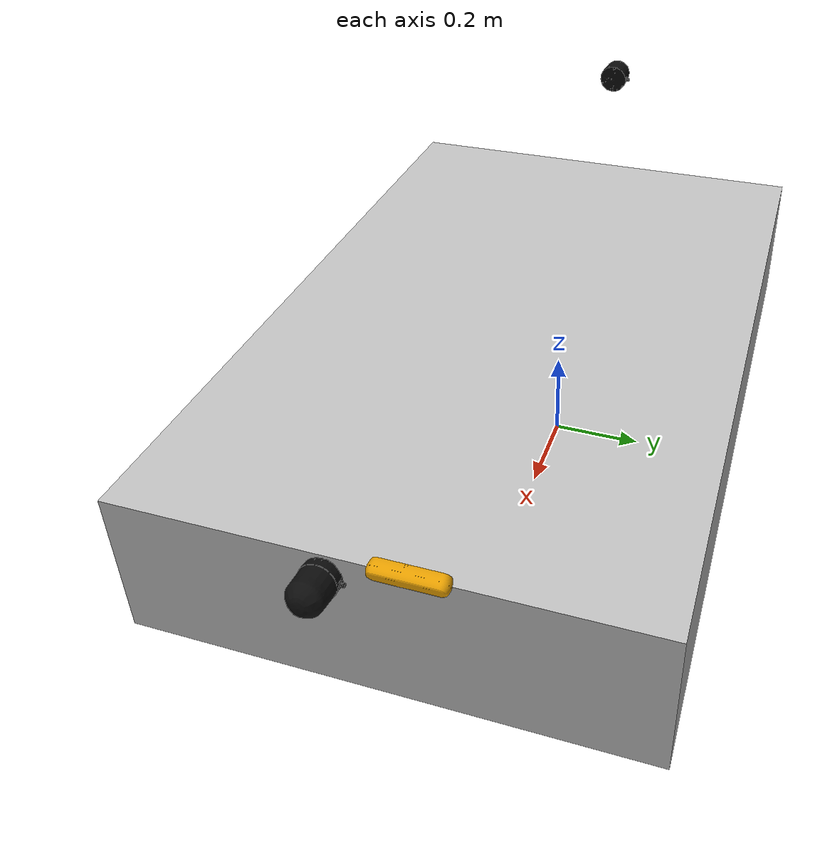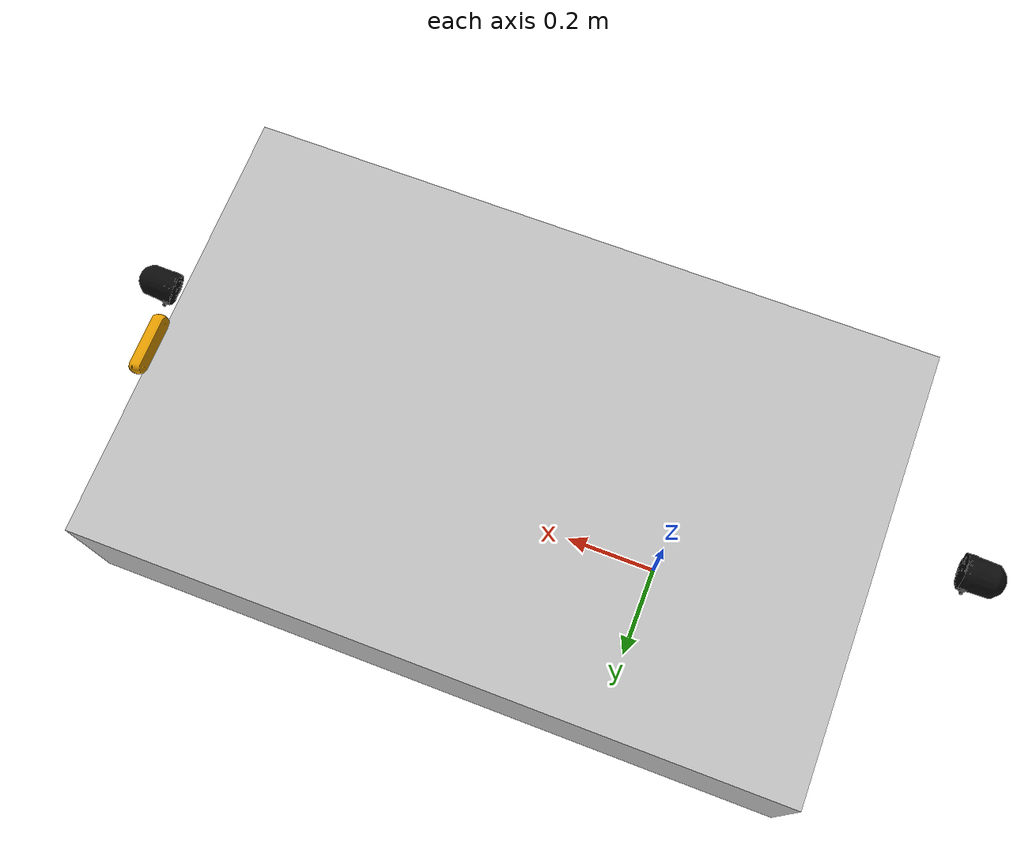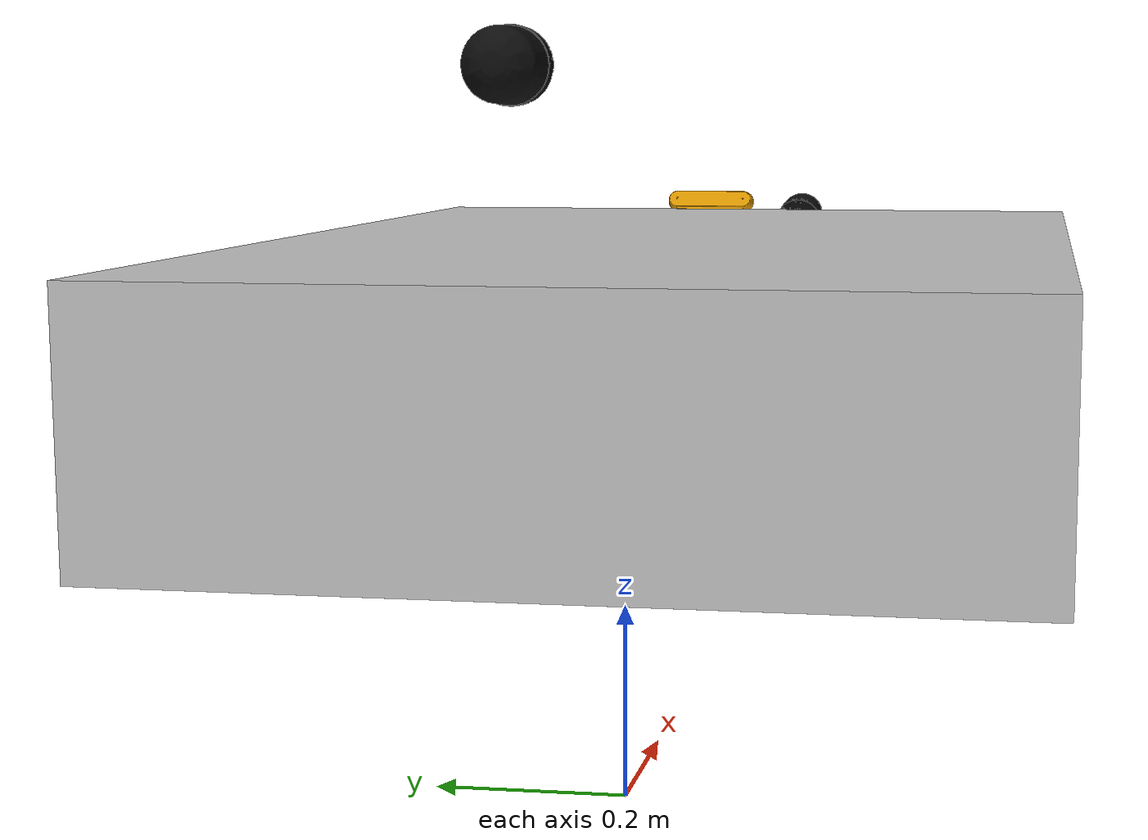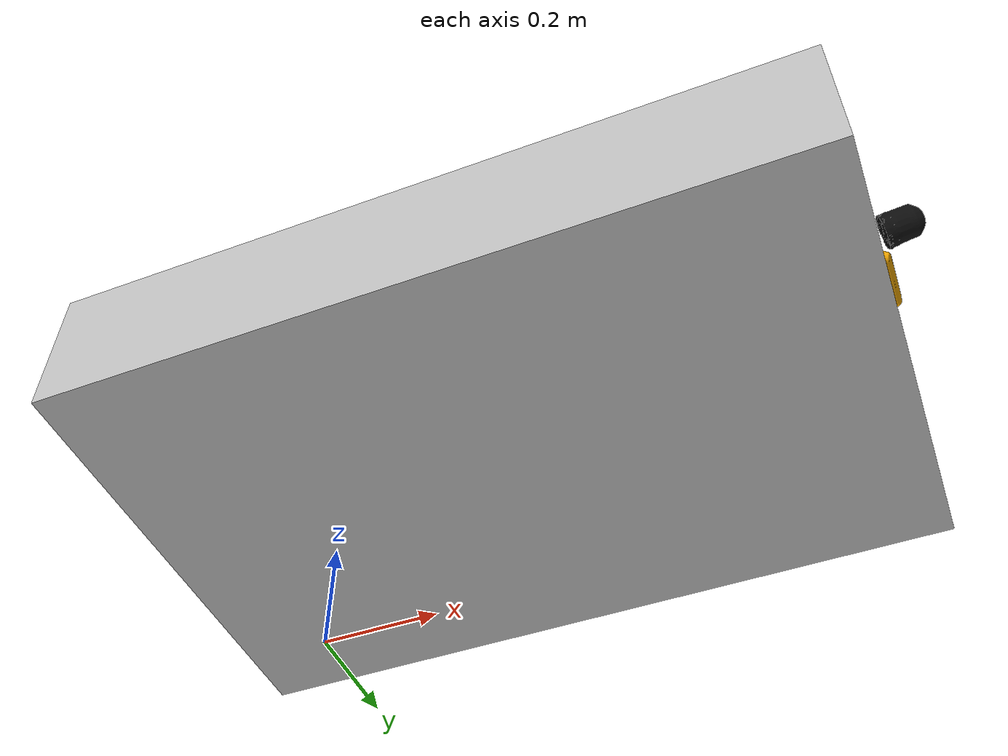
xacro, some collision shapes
<?xml version="1.0"?>
<robot name="sweeper_complete" xmlns:xacro="http://www.ros.org/wiki/xacro">

<!-- Modello generico del robot: telaio, ruote e sensori-->
<xacro:include filename="$(find autosweep_description)/urdf/sweeper_complete.urdf.xacro" />

<!-- Hardware simulato esposto a ros2 control-->
<ros2_control name="GazeboSimSystem" type="system">

    <hardware>
        <plugin>gz_ros2_control/GazeboSimSystem</plugin>
    </hardware>

    <!-- Interfaccia sterzo -->
    <joint name="front_steering_joint">
        <command_interface name="position">
            <param name="min"> -0.7854 </param>
            <param name="max"> 0.7854 </param>
        </command_interface>

        <state_interface name="position" />
        <state_interface name="velocity" />
    </joint>

    <!-- Interfaccia ruota motrice anteriore -->
    <joint name="front_wheel_joint">
      <command_interface name="velocity">
        <param name="min">-16.0</param>
        <param name="max">16.0</param>
      </command_interface>

      <state_interface name="position" />
      <state_interface name="velocity" />
    </joint>

    <!-- Interfaccia ruote posteriori -->
    <joint name="rear_left_wheel_joint">
      <state_interface name="position" />
      <state_interface name="velocity" />
    </joint>

    <joint name="rear_right_wheel_joint">
      <state_interface name="position" />
      <state_interface name="velocity" />
    </joint>

  </ros2_control>

  <!-- Collegamento tra interfacce ros2_control e giunti in Gazebo -->
  <gazebo>
    <plugin
      filename="libgz_ros2_control-system.so"
      name="gz_ros2_control::GazeboSimROS2ControlPlugin">

      <parameters>
        $(find autosweep_gazebo)/config/sweeper_controllers.yaml
      </parameters>

    </plugin>
  </gazebo>

  <!-- Odometria ground truth: posa reale del robot nel mondo Gazebo,
       pubblicata come /odom e TF odom -> base_footprint (via bridge) -->
  <gazebo>
    <plugin
      filename="gz-sim-odometry-publisher-system"
      name="gz::sim::systems::OdometryPublisher">
      <odom_frame>odom</odom_frame>
      <robot_base_frame>base_footprint</robot_base_frame>
      <dimensions>3</dimensions>
      <odom_publish_frequency>50</odom_publish_frequency>
      <odom_topic>/ground_truth/odom</odom_topic>
      <tf_topic>/ground_truth/tf</tf_topic>
    </plugin>
  </gazebo>

</robot>

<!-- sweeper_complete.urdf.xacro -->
<robot name="sweeper_complete" xmlns:xacro="http://www.ros.org/wiki/xacro">

  <!-- Load the vehicle -->
  <xacro:include filename="$(find autosweep_description)/urdf/sweeper.urdf" />

  <!-- Load the sensors -->
  <xacro:include filename="$(find autosweep_description)/urdf/lidar_dome.xacro" />
  <xacro:include filename="$(find autosweep_description)/urdf/imu.xacro" />
  <xacro:include filename="$(find autosweep_description)/urdf/rgbd_camera.xacro" />

  <!-- Load the drivetrain -->
  <xacro:include filename="$(find autosweep_description)/urdf/drivetrain.xacro" />
  <xacro:sweeper_base_footprint child="base_link" />
  <xacro:sweeper_drivetrain parent="base_link" />

  <!-- LiDAR anteriori attivi: true = presente nel modello -->
  <xacro:property name="enable_lidar_front_low" value="false" />
  <xacro:property name="enable_lidar_front_high" value="false" />
  <xacro:property name="enable_lidar_front_fwd" value="false" />
  <xacro:property name="enable_lidar_front_bwd" value="false" />

  <!-- Posa del LiDAR anteriore intermedio: inclinazione su y e
       spostamento lungo il proprio asse z rispetto a (0.7, 0, 0.20) -->
  <xacro:property name="lidar_front_pitch" value="1.4137" />
  <xacro:property name="lidar_front_ego_z" value="0.02" />

  <xacro:property name="front_pair_gap" value="0.03" />
  <xacro:property name="front_pair_spacing" value="${0.035025 + front_pair_gap + 0.124/2}" />
  <xacro:property name="lidar_front_y" value="${-front_pair_spacing/2}" />
  <xacro:property name="rgbd_camera_front_y" value="${front_pair_spacing/2}" />

  <!-- Pose provvisoria del LiDAR anteriore basso (disattivato) -->
  <xacro:if value="${enable_lidar_front_low}">
    <xacro:lidar_dome
      name="lidar_front_low"
      parent="base_link"
      xyz="${0.7 + 0.07*sin(1.5184)} 0 ${0.00 + 0.07*cos(1.5184)}"
      rpy="0 1.5184 0"
      topic="lidar_front_low" />
  </xacro:if>

  <!-- Pose provvisoria del LiDAR anteriore -->
  <xacro:lidar_dome
    name="lidar_front"
    parent="base_link"
    xyz="${0.7 + lidar_front_ego_z*sin(lidar_front_pitch)} ${lidar_front_y} ${0.20 + lidar_front_ego_z*cos(lidar_front_pitch)}"
    rpy="0 ${lidar_front_pitch} 0"
    topic="lidar_front" />

  <!-- Variante avanzata: +5 cm lungo z del LiDAR anteriore (disattivato) -->
  <xacro:if value="${enable_lidar_front_fwd}">
    <xacro:lidar_dome
      name="lidar_front_fwd"
      parent="base_link"
      xyz="${0.7 + (lidar_front_ego_z + 0.05)*sin(lidar_front_pitch)} 0 ${0.20 + (lidar_front_ego_z + 0.05)*cos(lidar_front_pitch)}"
      rpy="0 ${lidar_front_pitch} 0"
      topic="lidar_front_fwd" />
  </xacro:if>

  <!-- Variante arretrata: -5 cm lungo z del LiDAR anteriore (disattivato) -->
  <xacro:if value="${enable_lidar_front_bwd}">
    <xacro:lidar_dome
      name="lidar_front_bwd"
      parent="base_link"
      xyz="${0.7 + (lidar_front_ego_z - 0.05)*sin(lidar_front_pitch)} 0 ${0.20 + (lidar_front_ego_z - 0.05)*cos(lidar_front_pitch)}"
      rpy="0 ${lidar_front_pitch} 0"
      topic="lidar_front_bwd" />
  </xacro:if>

  <!-- Pose provvisoria del LiDAR anteriore alto (disattivato) -->
  <xacro:if value="${enable_lidar_front_high}">
    <xacro:lidar_dome
      name="lidar_front_high"
      parent="base_link"
      xyz="0.7 0 0.40"
      rpy="0 1.3090 0"
      topic="lidar_front_high" />
  </xacro:if>

  <!-- Pose provvisoria del LiDAR posteriore -->
  <xacro:lidar_dome
    name="lidar_rear"
    parent="base_link"
    xyz="-0.78 0 0.40"
    rpy="0 -1.5707 0"
    topic="lidar_rear" />

  <xacro:property name="lidar_front_dome_center" value="${lidar_front_ego_z + 0.036525}" />
  <xacro:property name="rgbd_camera_front_pitch" value="0.3491" />
  <xacro:property name="rgbd_camera_front_back" value="0.05" />
  <xacro:depth_camera
    name="rgbd_camera_left"
    parent="base_link"
    xyz="${0.7 + lidar_front_dome_center*sin(lidar_front_pitch) + 0.013 - rgbd_camera_front_back*cos(rgbd_camera_front_pitch)} ${rgbd_camera_front_y} ${0.20 + lidar_front_dome_center*cos(lidar_front_pitch) + rgbd_camera_front_back*sin(rgbd_camera_front_pitch)}"
    rpy="0 ${rgbd_camera_front_pitch} 0"
    topic="rgbd_camera_left" />

</robot>

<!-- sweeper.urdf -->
<robot
  name="OS_70">
  <link
    name="base_link">
    <inertial>
      <origin
        xyz="-0.124450544387159 0.0590801370510477 -0.0794266041946113"
        rpy="0 0 0" />
      <mass
        value="265.13716831964" />
      <inertia
        ixx="5.97706926862166"
        ixy="0.0418455171998269"
        ixz="0.704107777888971"
        iyy="9.66902473416374"
        iyz="0.00364512146478583"
        izz="6.89463051457995" />
    </inertial>
    <visual>
      <origin
        xyz="0 0 0"
        rpy="0 0 0" />
      <geometry>
        <mesh
          filename="file://$(find autosweep_description)/meshes/sweeper_semplificata_5mm.stl"
          scale="0.001 0.001 0.001" />
      </geometry>
      <material
        name="">
        <color
          rgba="0.752941176470588 0.752941176470588 0.752941176470588 1" />
      </material>
    </visual>

    <!-- Parte inferiore rigida del telaio -->
    <collision name="base_lower_collision">
      <origin xyz="0.01 0 0.085" rpy="0 0 0" />
      <geometry>
        <box size="1.38 0.88 0.27" />
      </geometry>
    </collision>

    <!-- Parte centrale della carrozzeria -->
    <collision name="base_middle_collision">
      <origin xyz="-0.10 0 0.35" rpy="0 0 0" />
      <geometry>
        <box size="1.28 0.89 0.26" />
      </geometry>
    </collision>

    <!-- Parte superiore: seduta, cofano e struttura alta -->
    <collision name="base_upper_collision">
      <origin xyz="-0.03 0 0.69" rpy="0 0 0" />
      <geometry>
        <box size="1.26 0.77 0.42" />
      </geometry>
    </collision>
  </link>
</robot>

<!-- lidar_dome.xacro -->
<robot xmlns:xacro="http://www.ros.org/wiki/xacro">

  <xacro:macro name="lidar_dome" params="name parent xyz rpy topic">

    <joint name="${name}_joint" type="fixed">
      <parent link="${parent}" />
      <child link="${name}_link" />
      <origin xyz="${xyz}" rpy="${rpy}" />
    </joint>

    <!-- Keep the LiDAR as a distinct Gazebo link instead of lumping it into
         its parent. This preserves the sensor / visual association. -->
    <gazebo reference="${name}_joint">
      <preserveFixedJoint>true</preserveFixedJoint>
    </gazebo>

    <link name="${name}_link">

      <visual>
        <origin xyz="0 0 0" rpy="0 0 0" />

        <geometry>
          <mesh
            filename="file://$(find autosweep_description)/meshes/Depth-Cameras/JT128-physical.stl"
            scale="0.001 0.001 0.001" />
        </geometry>

        <material name="${name}_dark">
          <color rgba="0.05 0.05 0.05 1" />
        </material>
      </visual>

      <collision>
        <origin xyz="0 0 0.036525" rpy="0 0 0" />

        <geometry>
          <cylinder radius="0.035025" length="0.07305" />
        </geometry>
      </collision>

      <inertial>
        <origin xyz="0 0 0.036525" rpy="0 0 0" />

        <mass value="0.265" />

        <inertia
          ixx="1.8e-4" ixy="0" ixz="0"
          iyy="1.8e-4" iyz="0"
          izz="1.3e-4" />
      </inertial>

    </link>

    <gazebo reference="${name}_link">
      <!-- The official JT128 STL is a closed, opaque shell. Keep it visible
           in Gazebo, but exclude it from the GPU LiDAR render pass. -->
      <visual>
        <visibility_flags>0x02</visibility_flags>
      </visual>

      <sensor name="${name}" type="gpu_lidar">

        <pose>0 0 0 0 0 0</pose>
        <visualize>true</visualize>
        <always_on>1</always_on>

        <!-- Il frame_id ROS (${name}_link) e' assegnato dal bridge:
             gz_frame_id non fa parte dello standard SDF e genera warning -->
        <topic>${topic}</topic>
        <update_rate>10</update_rate>

        <lidar>
          <scan>
            <horizontal>
              <samples>900</samples>
              <resolution>1.0</resolution>
              <min_angle>0.0</min_angle>
              <max_angle>6.28318530718</max_angle>
            </horizontal>
            <vertical>
              <samples>128</samples>
              <resolution>1.0</resolution>
              <min_angle>-0.0767944871</min_angle>
              <max_angle>1.579522973</max_angle>
            </vertical>
          </scan>

          <range>
            <min>0.05</min>
            <max>60.0</max>
            <resolution>0.02</resolution>
          </range>

          <noise>
            <type>gaussian</type>
            <mean>0.0</mean>
            <stddev>0.03</stddev> <!-- lidar accuracy is +/-3cm -->
          </noise>

          <!-- World visuals use the default flags and remain detectable;
               the JT128 visual uses 0x02, so 0x01 & 0x02 == 0. -->
          <visibility_mask>0x01</visibility_mask>
        </lidar>

      </sensor>
    </gazebo>

    <!-- Add IMU sensor -->
    <xacro:imu_sensor
      name="${name}"
      parent="${name}_link"
      topic="${topic}/imu" />

  </xacro:macro>

</robot>

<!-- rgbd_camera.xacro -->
<robot xmlns:xacro="http://www.ros.org/wiki/xacro">

  <xacro:macro name="depth_camera" params="name parent xyz rpy topic">

    <joint name="${name}_joint" type="fixed">
      <parent link="${parent}" />
      <child link="${name}_link" />
      <origin xyz="${xyz}" rpy="${rpy}" />
    </joint>

    <!-- Mantiene la camera come link distinto in Gazebo invece di accorparla
         nel link padre, come per i LiDAR -->
    <gazebo reference="${name}_joint">
      <preserveFixedJoint>true</preserveFixedJoint>
    </gazebo>

    <link name="${name}_link">
      <visual>
        <origin xyz="-0.026 0 0" rpy="1.5707 0 1.5707"/>
        <geometry>
          <mesh
            filename="file://$(find autosweep_description)/meshes/Depth-Cameras/D456_Solid.stl"
            scale="0.001 0.001 0.001" />
        </geometry>
      </visual>

      <collision>
        <origin xyz="-0.013 0 0" rpy="0 0 0"/>
        <geometry>
          <box size="0.026 0.124 0.029"/>
        </geometry>
      </collision>

      <inertial>
        <origin xyz="-0.013 0 0" rpy="0 0 0"/>
        <mass value="0.116" />
        <inertia ixx="1e-4" ixy="0" ixz="0"
          iyy="1e-4" iyz="0" izz="1e-4" />
      </inertial>
    </link>

    <gazebo reference="${name}_link">
      <sensor name="${name}" type="rgbd_camera">
        <pose>0 0 0 0 0 0</pose>
        <always_on>true</always_on>
        <update_rate>30</update_rate> <!-- frame rate, fps-->
        <topic>${topic}</topic>
        <camera>

          <horizontal_fov>1.518436449</horizontal_fov>

          <image>
            <width>1280</width>
            <height>720</height>
            <format>R8G8B8</format>
          </image>

          <clip>
            <!-- depth range-->
            <near>0.52</near>
            <far>6.0</far>
          </clip>

          <noise>
            <type>gaussian</type>
            <mean>0</mean>
            <stddev>0.002</stddev>
          </noise>

          <optical_frame_id>${name}_link_optical</optical_frame_id>

        </camera>

      </sensor>
      <sensor name="${name}_color" type="camera">
        <pose>0 0 0 0 0 0</pose>
        <always_on>true</always_on>
        <update_rate>30</update_rate>
        <topic>${topic}/color/image</topic>

        <camera>
          <horizontal_fov>1.570796327</horizontal_fov>

          <!-- 0x3FFFFFFF: i due bit alti sono riservati da ogre2, il valore
               predefinito 0xFFFFFFFF genera un warning -->
          <visibility_mask>1073741823</visibility_mask>

          <image>
            <width>1280</width>
            <height>800</height>
            <format>R8G8B8</format>
          </image>

          <clip>
            <near>0.01</near>
            <far>100.0</far>
          </clip>

          <noise>
            <type>gaussian</type>
            <mean>0.0</mean>
            <stddev>0.002</stddev>
          </noise>

          <optical_frame_id>${name}_link_optical</optical_frame_id>
        </camera>
      </sensor>
    </gazebo>

    <!-- Solve ROS/optical frames conflict -->
    <link name="${name}_link_optical">
    </link>

    <joint type="fixed" name="${name}_optical_joint">
      <origin xyz="0 0 0" rpy="-1.5707 0 -1.5707" />
      <child link="${name}_link_optical" />
      <parent link="${name}_link" />
    </joint>

    <!-- Add IMU sensor -->
    <xacro:imu_sensor
      name="${name}"
      parent="${name}_link"
      topic="${topic}/imu" />

  </xacro:macro>

</robot>

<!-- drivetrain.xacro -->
<robot xmlns:xacro="http://www.ros.org/wiki/xacro">

    <!--TODO: Controlla che le dimensioni siano corrette-->
    <!-- Dimensioni Rider 1201 EB-->
    <xacro:property name="wheel_radius" value="0.125"/>
    <xacro:property name="front_wheel_width" value="0.101"/>
    <xacro:property name="rear_wheel_width" value="0.08"/>

    <!-- Posizioni provvisorie delle ruote -->
    <xacro:property name="front_x" value="0.453"/>
    <xacro:property name="rear_x" value="-0.324"/>
    <xacro:property name="rear_half_track" value="0.4455"/>
    <xacro:property name="wheel_z" value="-0.208"/>

    <!-- Range mobilità sterzo TODO: sostituire con quello corretto -->
    <xacro:property name="steering_limit" value="0.7854"/>

    <!-- Macro per il footprint della base -->
    <xacro:macro name="sweeper_base_footprint" params="child">
        <link name="base_footprint"/>

        <joint name="base_footprint_joint" type="fixed">
        <parent link="base_footprint"/>
        <child link="${child}"/>
        <origin
            xyz="${-rear_x} 0 ${wheel_radius - wheel_z}"
            rpy="0 0 0"/>
        </joint>
    </xacro:macro>

    <xacro:macro name="sweeper_wheel_link" params="name width mass">
        <link name="${name}">
            <inertial>
                <origin xyz="0 0 0" rpy="0 0 0"/>
                <mass value="${mass}"/>

            <!-- Inerzia di un cilindro pieno con asse lungo Y -->
            <inertia
            ixx="${mass * (3.0 * wheel_radius * wheel_radius + width * width) / 12.0}"
            ixy="0"
            ixz="0"
            iyy="${mass * wheel_radius * wheel_radius / 2.0}"
            iyz="0"
            izz="${mass * (3.0 * wheel_radius * wheel_radius + width * width) / 12.0}" />
        </inertial>
        <!--
            Per ora non aggiungiamo il visual: le ruote sono già visibili
            nella mesh completa del telaio.
        -->
        <collision>
            <origin xyz="0 0 0" rpy="1.57079632679 0 0"/>
            <geometry>
                <cylinder radius="${wheel_radius}" length="${width}"/>
            </geometry>
        </collision>
        </link>
    </xacro:macro>

    <xacro:macro name="sweeper_drivetrain" params="parent">

        <!-- Supporto virtuale che ruota con lo sterzo -->
        <link name="front_steering_link">
            <inertial>
                <origin xyz="0 0 0" rpy="0 0 0"/>
                <mass value="0.1"/>
                <inertia
                ixx="0.001" ixy="0" ixz="0"
                iyy="0.001" iyz="0"
                izz="0.001" />
            </inertial>
        </link>

        <joint name="front_steering_joint" type="revolute">
            <parent link="${parent}"/>
            <child link="front_steering_link"/>
            <origin xyz="${front_x} 0 ${wheel_z}" rpy="0 0 0"/>
            <axis xyz="0 0 1"/>
            <limit
                effort="100"
                velocity="1.0"
                lower="${-steering_limit}"
                upper="${steering_limit}"/>
            <dynamics damping="0.2" friction="0.1"/>
        </joint>

        <!-- Ruote -->
        <!-- Front wheel -->
        <xacro:sweeper_wheel_link
            name="front_wheel_link"
            width="${front_wheel_width}"
            mass="1.0" />

        <joint name="front_wheel_joint" type="continuous">
            <parent link="front_steering_link"/>
            <child link="front_wheel_link"/>
            <origin xyz="0 0 0" rpy="0 0 0"/>
            <axis xyz="0 1 0"/>
            <limit effort="100" velocity="16.0"/>
            <dynamics damping="0.05" friction="0.0"/>
        </joint>

        <!-- Rear left wheel -->
        <xacro:sweeper_wheel_link
            name="rear_left_wheel_link"
            width="${rear_wheel_width}"
            mass="1.0" />

        <joint name="rear_left_wheel_joint" type="continuous">
            <parent link="${parent}"/>
            <child link="rear_left_wheel_link"/>
            <origin xyz="${rear_x} ${rear_half_track} ${wheel_z}" rpy="0 0 0"/>
            <axis xyz="0 1 0"/>
            <limit effort="50" velocity="16.0"/>
            <dynamics damping="0.05" friction="0.0"/>
        </joint>

        <!-- Rear right wheel -->
        <xacro:sweeper_wheel_link
            name="rear_right_wheel_link"
            width="${rear_wheel_width}"
            mass="1.0" />

        <joint name="rear_right_wheel_joint" type="continuous">
            <parent link="${parent}"/>
            <child link="rear_right_wheel_link"/>
            <origin xyz="${rear_x} ${-rear_half_track} ${wheel_z}" rpy="0 0 0"/>
            <axis xyz="0 1 0"/>
            <limit effort="50" velocity="16.0"/>
            <dynamics damping="0.05" friction="0.0"/>
        </joint>

    </xacro:macro>

</robot>
